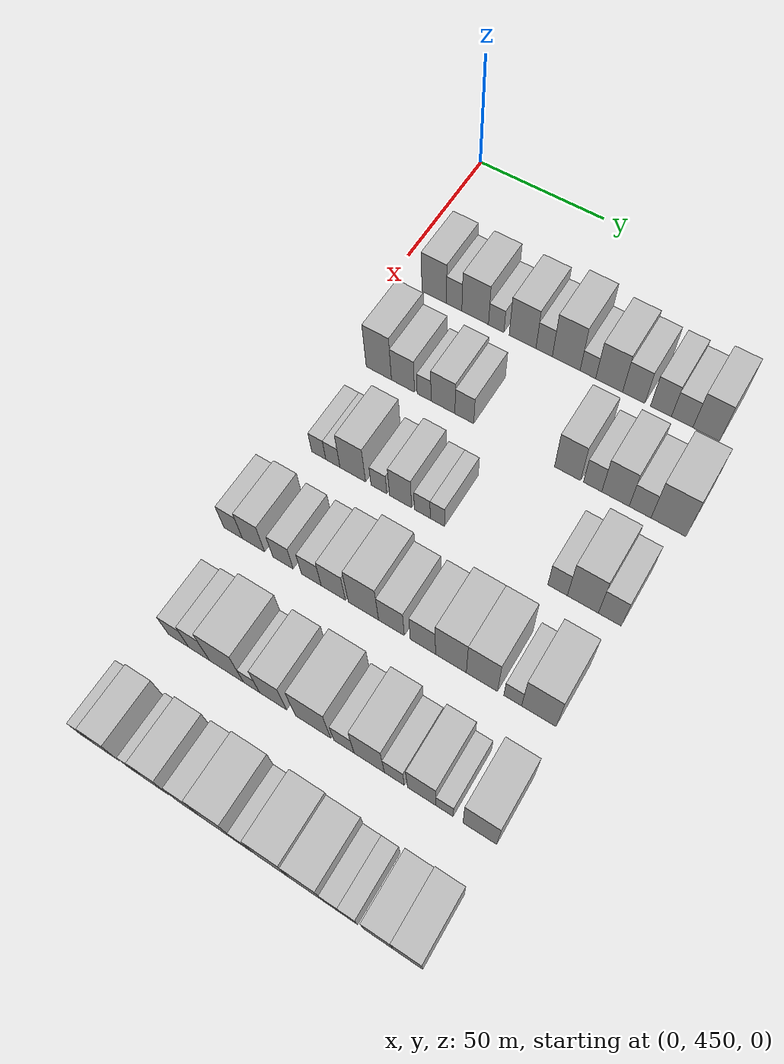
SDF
<sdf version="1.6">
 <world name="default">
  <model name="building_118">
   <static>1</static>
   <pose>50.0000 466.9596 0 0.000000 0.000000 0.000000</pose>
   <link name="link">
    <pose>0 0 10.50 0 0 0</pose>
    <collision name="collision"><geometry><box><size>20.0000 9.7197 21.0000</size></box></geometry></collision>
    <visual name="visual">
     <cast_shadows>0</cast_shadows>
     <geometry><box><size>20.0000 9.7197 21.0000</size></box></geometry>
     <material>
      <script>
       <uri>model://HANNAS_wall/materials/scripts</uri>
       <uri>model://HANNAS_wall/materials/textures</uri>
       <name>vrc/HANNAS_wall</name>
      </script>
     </material>
    </visual>
   </link>
  </model>
  <model name="building_119">
   <static>1</static>
   <pose>50.0000 474.8263 0 0.000000 0.000000 0.000000</pose>
   <link name="link">
    <pose>0 0 7.50 0 0 0</pose>
    <collision name="collision"><geometry><box><size>20.0000 6.0135 15.0000</size></box></geometry></collision>
    <visual name="visual">
     <cast_shadows>0</cast_shadows>
     <geometry><box><size>20.0000 6.0135 15.0000</size></box></geometry>
     <material>
      <script>
       <uri>model://HANNAS_wall/materials/scripts</uri>
       <uri>model://HANNAS_wall/materials/textures</uri>
       <name>vrc/HANNAS_wall</name>
      </script>
     </material>
    </visual>
   </link>
  </model>
  <model name="building_120">
   <static>1</static>
   <pose>50.0000 483.0062 0 0.000000 0.000000 0.000000</pose>
   <link name="link">
    <pose>0 0 10.50 0 0 0</pose>
    <collision name="collision"><geometry><box><size>20.0000 10.3464 21.0000</size></box></geometry></collision>
    <visual name="visual">
     <cast_shadows>0</cast_shadows>
     <geometry><box><size>20.0000 10.3464 21.0000</size></box></geometry>
     <material>
      <script>
       <uri>model://HANNAS_wall/materials/scripts</uri>
       <uri>model://HANNAS_wall/materials/textures</uri>
       <name>vrc/HANNAS_wall</name>
      </script>
     </material>
    </visual>
   </link>
  </model>
  <model name="building_121">
   <static>1</static>
   <pose>50.0000 491.1501 0 0.000000 0.000000 0.000000</pose>
   <link name="link">
    <pose>0 0 6.00 0 0 0</pose>
    <collision name="collision"><geometry><box><size>20.0000 5.9414 12.0000</size></box></geometry></collision>
    <visual name="visual">
     <cast_shadows>0</cast_shadows>
     <geometry><box><size>20.0000 5.9414 12.0000</size></box></geometry>
     <material>
      <script>
       <uri>model://HANNAS_wall/materials/scripts</uri>
       <uri>model://HANNAS_wall/materials/textures</uri>
       <name>vrc/HANNAS_wall</name>
      </script>
     </material>
    </visual>
   </link>
  </model>
  <model name="building_122">
   <static>1</static>
   <pose>50.0000 501.1962 0 0.000000 0.000000 0.000000</pose>
   <link name="link">
    <pose>0 0 10.50 0 0 0</pose>
    <collision name="collision"><geometry><box><size>20.0000 10.1509 21.0000</size></box></geometry></collision>
    <visual name="visual">
     <cast_shadows>0</cast_shadows>
     <geometry><box><size>20.0000 10.1509 21.0000</size></box></geometry>
     <material>
      <script>
       <uri>model://HANNAS_wall/materials/scripts</uri>
       <uri>model://HANNAS_wall/materials/textures</uri>
       <name>vrc/HANNAS_wall</name>
      </script>
     </material>
    </visual>
   </link>
  </model>
  <model name="building_123">
   <static>1</static>
   <pose>50.0000 509.3307 0 0.000000 0.000000 0.000000</pose>
   <link name="link">
    <pose>0 0 7.50 0 0 0</pose>
    <collision name="collision"><geometry><box><size>20.0000 6.1182 15.0000</size></box></geometry></collision>
    <visual name="visual">
     <cast_shadows>0</cast_shadows>
     <geometry><box><size>20.0000 6.1182 15.0000</size></box></geometry>
     <material>
      <script>
       <uri>model://HANNAS_wall/materials/scripts</uri>
       <uri>model://HANNAS_wall/materials/textures</uri>
       <name>vrc/HANNAS_wall</name>
      </script>
     </material>
    </visual>
   </link>
  </model>
  <model name="building_124">
   <static>1</static>
   <pose>50.0000 517.5386 0 0.000000 0.000000 0.000000</pose>
   <link name="link">
    <pose>0 0 12.00 0 0 0</pose>
    <collision name="collision"><geometry><box><size>20.0000 10.2977 24.0000</size></box></geometry></collision>
    <visual name="visual">
     <cast_shadows>0</cast_shadows>
     <geometry><box><size>20.0000 10.2977 24.0000</size></box></geometry>
     <material>
      <script>
       <uri>model://HANNAS_wall/materials/scripts</uri>
       <uri>model://HANNAS_wall/materials/textures</uri>
       <name>vrc/HANNAS_wall</name>
      </script>
     </material>
    </visual>
   </link>
  </model>
  <model name="building_125">
   <static>1</static>
   <pose>50.0000 525.5485 0 0.000000 0.000000 0.000000</pose>
   <link name="link">
    <pose>0 0 6.00 0 0 0</pose>
    <collision name="collision"><geometry><box><size>20.0000 5.7221 12.0000</size></box></geometry></collision>
    <visual name="visual">
     <cast_shadows>0</cast_shadows>
     <geometry><box><size>20.0000 5.7221 12.0000</size></box></geometry>
     <material>
      <script>
       <uri>model://HANNAS_wall/materials/scripts</uri>
       <uri>model://HANNAS_wall/materials/textures</uri>
       <name>vrc/HANNAS_wall</name>
      </script>
     </material>
    </visual>
   </link>
  </model>
  <model name="building_126">
   <static>1</static>
   <pose>50.0000 533.2576 0 0.000000 0.000000 0.000000</pose>
   <link name="link">
    <pose>0 0 10.50 0 0 0</pose>
    <collision name="collision"><geometry><box><size>20.0000 9.6961 21.0000</size></box></geometry></collision>
    <visual name="visual">
     <cast_shadows>0</cast_shadows>
     <geometry><box><size>20.0000 9.6961 21.0000</size></box></geometry>
     <material>
      <script>
       <uri>model://HANNAS_wall/materials/scripts</uri>
       <uri>model://HANNAS_wall/materials/textures</uri>
       <name>vrc/HANNAS_wall</name>
      </script>
     </material>
    </visual>
   </link>
  </model>
  <model name="building_127">
   <static>1</static>
   <pose>50.0000 542.0838 0 0.000000 0.000000 0.000000</pose>
   <link name="link">
    <pose>0 0 9.00 0 0 0</pose>
    <collision name="collision"><geometry><box><size>20.0000 7.9563 18.0000</size></box></geometry></collision>
    <visual name="visual">
     <cast_shadows>0</cast_shadows>
     <geometry><box><size>20.0000 7.9563 18.0000</size></box></geometry>
     <material>
      <script>
       <uri>model://HANNAS_wall/materials/scripts</uri>
       <uri>model://HANNAS_wall/materials/textures</uri>
       <name>vrc/HANNAS_wall</name>
      </script>
     </material>
    </visual>
   </link>
  </model>
  <model name="building_128">
   <static>1</static>
   <pose>50.0000 551.7573 0 0.000000 0.000000 0.000000</pose>
   <link name="link">
    <pose>0 0 9.00 0 0 0</pose>
    <collision name="collision"><geometry><box><size>20.0000 7.3906 18.0000</size></box></geometry></collision>
    <visual name="visual">
     <cast_shadows>0</cast_shadows>
     <geometry><box><size>20.0000 7.3906 18.0000</size></box></geometry>
     <material>
      <script>
       <uri>model://HANNAS_wall/materials/scripts</uri>
       <uri>model://HANNAS_wall/materials/textures</uri>
       <name>vrc/HANNAS_wall</name>
      </script>
     </material>
    </visual>
   </link>
  </model>
  <model name="building_129">
   <static>1</static>
   <pose>50.0000 559.2016 0 0.000000 0.000000 0.000000</pose>
   <link name="link">
    <pose>0 0 7.50 0 0 0</pose>
    <collision name="collision"><geometry><box><size>20.0000 7.4981 15.0000</size></box></geometry></collision>
    <visual name="visual">
     <cast_shadows>0</cast_shadows>
     <geometry><box><size>20.0000 7.4981 15.0000</size></box></geometry>
     <material>
      <script>
       <uri>model://HANNAS_wall/materials/scripts</uri>
       <uri>model://HANNAS_wall/materials/textures</uri>
       <name>vrc/HANNAS_wall</name>
      </script>
     </material>
    </visual>
   </link>
  </model>
  <model name="building_130">
   <static>1</static>
   <pose>50.0000 567.5544 0 0.000000 0.000000 0.000000</pose>
   <link name="link">
    <pose>0 0 10.50 0 0 0</pose>
    <collision name="collision"><geometry><box><size>20.0000 9.2074 21.0000</size></box></geometry></collision>
    <visual name="visual">
     <cast_shadows>0</cast_shadows>
     <geometry><box><size>20.0000 9.2074 21.0000</size></box></geometry>
     <material>
      <script>
       <uri>model://HANNAS_wall/materials/scripts</uri>
       <uri>model://HANNAS_wall/materials/textures</uri>
       <name>vrc/HANNAS_wall</name>
      </script>
     </material>
    </visual>
   </link>
  </model>
  <model name="building_245">
   <static>1</static>
   <pose>85.0000 467.4620 0 0.000000 0.000000 0.000000</pose>
   <link name="link">
    <pose>0 0 12.00 0 0 0</pose>
    <collision name="collision"><geometry><box><size>20.0000 9.7308 24.0000</size></box></geometry></collision>
    <visual name="visual">
     <cast_shadows>0</cast_shadows>
     <geometry><box><size>20.0000 9.7308 24.0000</size></box></geometry>
     <material>
      <script>
       <uri>model://HANNAS_wall/materials/scripts</uri>
       <uri>model://HANNAS_wall/materials/textures</uri>
       <name>vrc/HANNAS_wall</name>
      </script>
     </material>
    </visual>
   </link>
  </model>
  <model name="building_246">
   <static>1</static>
   <pose>85.0000 476.7259 0 0.000000 0.000000 0.000000</pose>
   <link name="link">
    <pose>0 0 9.00 0 0 0</pose>
    <collision name="collision"><geometry><box><size>20.0000 8.7969 18.0000</size></box></geometry></collision>
    <visual name="visual">
     <cast_shadows>0</cast_shadows>
     <geometry><box><size>20.0000 8.7969 18.0000</size></box></geometry>
     <material>
      <script>
       <uri>model://HANNAS_wall/materials/scripts</uri>
       <uri>model://HANNAS_wall/materials/textures</uri>
       <name>vrc/HANNAS_wall</name>
      </script>
     </material>
    </visual>
   </link>
  </model>
  <model name="building_247">
   <static>1</static>
   <pose>85.0000 484.7436 0 0.000000 0.000000 0.000000</pose>
   <link name="link">
    <pose>0 0 6.00 0 0 0</pose>
    <collision name="collision"><geometry><box><size>20.0000 5.2387 12.0000</size></box></geometry></collision>
    <visual name="visual">
     <cast_shadows>0</cast_shadows>
     <geometry><box><size>20.0000 5.2387 12.0000</size></box></geometry>
     <material>
      <script>
       <uri>model://HANNAS_wall/materials/scripts</uri>
       <uri>model://HANNAS_wall/materials/textures</uri>
       <name>vrc/HANNAS_wall</name>
      </script>
     </material>
    </visual>
   </link>
  </model>
  <model name="building_248">
   <static>1</static>
   <pose>85.0000 491.8290 0 0.000000 0.000000 0.000000</pose>
   <link name="link">
    <pose>0 0 9.00 0 0 0</pose>
    <collision name="collision"><geometry><box><size>20.0000 8.9320 18.0000</size></box></geometry></collision>
    <visual name="visual">
     <cast_shadows>0</cast_shadows>
     <geometry><box><size>20.0000 8.9320 18.0000</size></box></geometry>
     <material>
      <script>
       <uri>model://HANNAS_wall/materials/scripts</uri>
       <uri>model://HANNAS_wall/materials/textures</uri>
       <name>vrc/HANNAS_wall</name>
      </script>
     </material>
    </visual>
   </link>
  </model>
  <model name="building_249">
   <static>1</static>
   <pose>85.0000 499.7810 0 0.000000 0.000000 0.000000</pose>
   <link name="link">
    <pose>0 0 7.50 0 0 0</pose>
    <collision name="collision"><geometry><box><size>20.0000 6.9721 15.0000</size></box></geometry></collision>
    <visual name="visual">
     <cast_shadows>0</cast_shadows>
     <geometry><box><size>20.0000 6.9721 15.0000</size></box></geometry>
     <material>
      <script>
       <uri>model://HANNAS_wall/materials/scripts</uri>
       <uri>model://HANNAS_wall/materials/textures</uri>
       <name>vrc/HANNAS_wall</name>
      </script>
     </material>
    </visual>
   </link>
  </model>
  <model name="building_250">
   <static>1</static>
   <pose>85.0000 536.9250 0 0.000000 0.000000 0.000000</pose>
   <link name="link">
    <pose>0 0 10.50 0 0 0</pose>
    <collision name="collision"><geometry><box><size>20.0000 9.1053 21.0000</size></box></geometry></collision>
    <visual name="visual">
     <cast_shadows>0</cast_shadows>
     <geometry><box><size>20.0000 9.1053 21.0000</size></box></geometry>
     <material>
      <script>
       <uri>model://HANNAS_wall/materials/scripts</uri>
       <uri>model://HANNAS_wall/materials/textures</uri>
       <name>vrc/HANNAS_wall</name>
      </script>
     </material>
    </visual>
   </link>
  </model>
  <model name="building_251">
   <static>1</static>
   <pose>85.0000 545.6342 0 0.000000 0.000000 0.000000</pose>
   <link name="link">
    <pose>0 0 7.50 0 0 0</pose>
    <collision name="collision"><geometry><box><size>20.0000 6.3131 15.0000</size></box></geometry></collision>
    <visual name="visual">
     <cast_shadows>0</cast_shadows>
     <geometry><box><size>20.0000 6.3131 15.0000</size></box></geometry>
     <material>
      <script>
       <uri>model://HANNAS_wall/materials/scripts</uri>
       <uri>model://HANNAS_wall/materials/textures</uri>
       <name>vrc/HANNAS_wall</name>
      </script>
     </material>
    </visual>
   </link>
  </model>
  <model name="building_252">
   <static>1</static>
   <pose>85.0000 553.4817 0 0.000000 0.000000 0.000000</pose>
   <link name="link">
    <pose>0 0 10.50 0 0 0</pose>
    <collision name="collision"><geometry><box><size>20.0000 9.3817 21.0000</size></box></geometry></collision>
    <visual name="visual">
     <cast_shadows>0</cast_shadows>
     <geometry><box><size>20.0000 9.3817 21.0000</size></box></geometry>
     <material>
      <script>
       <uri>model://HANNAS_wall/materials/scripts</uri>
       <uri>model://HANNAS_wall/materials/textures</uri>
       <name>vrc/HANNAS_wall</name>
      </script>
     </material>
    </visual>
   </link>
  </model>
  <model name="building_253">
   <static>1</static>
   <pose>85.0000 561.8520 0 0.000000 0.000000 0.000000</pose>
   <link name="link">
    <pose>0 0 7.50 0 0 0</pose>
    <collision name="collision"><geometry><box><size>20.0000 7.3589 15.0000</size></box></geometry></collision>
    <visual name="visual">
     <cast_shadows>0</cast_shadows>
     <geometry><box><size>20.0000 7.3589 15.0000</size></box></geometry>
     <material>
      <script>
       <uri>model://HANNAS_wall/materials/scripts</uri>
       <uri>model://HANNAS_wall/materials/textures</uri>
       <name>vrc/HANNAS_wall</name>
      </script>
     </material>
    </visual>
   </link>
  </model>
  <model name="building_254">
   <static>1</static>
   <pose>85.0000 571.3411 0 0.000000 0.000000 0.000000</pose>
   <link name="link">
    <pose>0 0 12.00 0 0 0</pose>
    <collision name="collision"><geometry><box><size>20.0000 11.6194 24.0000</size></box></geometry></collision>
    <visual name="visual">
     <cast_shadows>0</cast_shadows>
     <geometry><box><size>20.0000 11.6194 24.0000</size></box></geometry>
     <material>
      <script>
       <uri>model://HANNAS_wall/materials/scripts</uri>
       <uri>model://HANNAS_wall/materials/textures</uri>
       <name>vrc/HANNAS_wall</name>
      </script>
     </material>
    </visual>
   </link>
  </model>
  <model name="building_368">
   <static>1</static>
   <pose>120.0000 467.9441 0 0.000000 0.000000 0.000000</pose>
   <link name="link">
    <pose>0 0 6.00 0 0 0</pose>
    <collision name="collision"><geometry><box><size>20.0000 5.2953 12.0000</size></box></geometry></collision>
    <visual name="visual">
     <cast_shadows>0</cast_shadows>
     <geometry><box><size>20.0000 5.2953 12.0000</size></box></geometry>
     <material>
      <script>
       <uri>model://HANNAS_wall/materials/scripts</uri>
       <uri>model://HANNAS_wall/materials/textures</uri>
       <name>vrc/HANNAS_wall</name>
      </script>
     </material>
    </visual>
   </link>
  </model>
  <model name="building_369">
   <static>1</static>
   <pose>120.0000 473.2569 0 0.000000 0.000000 0.000000</pose>
   <link name="link">
    <pose>0 0 6.00 0 0 0</pose>
    <collision name="collision"><geometry><box><size>20.0000 5.3303 12.0000</size></box></geometry></collision>
    <visual name="visual">
     <cast_shadows>0</cast_shadows>
     <geometry><box><size>20.0000 5.3303 12.0000</size></box></geometry>
     <material>
      <script>
       <uri>model://HANNAS_wall/materials/scripts</uri>
       <uri>model://HANNAS_wall/materials/textures</uri>
       <name>vrc/HANNAS_wall</name>
      </script>
     </material>
    </visual>
   </link>
  </model>
  <model name="building_370">
   <static>1</static>
   <pose>120.0000 480.6622 0 0.000000 0.000000 0.000000</pose>
   <link name="link">
    <pose>0 0 10.50 0 0 0</pose>
    <collision name="collision"><geometry><box><size>20.0000 9.4802 21.0000</size></box></geometry></collision>
    <visual name="visual">
     <cast_shadows>0</cast_shadows>
     <geometry><box><size>20.0000 9.4802 21.0000</size></box></geometry>
     <material>
      <script>
       <uri>model://HANNAS_wall/materials/scripts</uri>
       <uri>model://HANNAS_wall/materials/textures</uri>
       <name>vrc/HANNAS_wall</name>
      </script>
     </material>
    </visual>
   </link>
  </model>
  <model name="building_371">
   <static>1</static>
   <pose>120.0000 490.3005 0 0.000000 0.000000 0.000000</pose>
   <link name="link">
    <pose>0 0 6.00 0 0 0</pose>
    <collision name="collision"><geometry><box><size>20.0000 5.7964 12.0000</size></box></geometry></collision>
    <visual name="visual">
     <cast_shadows>0</cast_shadows>
     <geometry><box><size>20.0000 5.7964 12.0000</size></box></geometry>
     <material>
      <script>
       <uri>model://HANNAS_wall/materials/scripts</uri>
       <uri>model://HANNAS_wall/materials/textures</uri>
       <name>vrc/HANNAS_wall</name>
      </script>
     </material>
    </visual>
   </link>
  </model>
  <model name="building_372">
   <static>1</static>
   <pose>120.0000 498.1602 0 0.000000 0.000000 0.000000</pose>
   <link name="link">
    <pose>0 0 9.00 0 0 0</pose>
    <collision name="collision"><geometry><box><size>20.0000 7.9231 18.0000</size></box></geometry></collision>
    <visual name="visual">
     <cast_shadows>0</cast_shadows>
     <geometry><box><size>20.0000 7.9231 18.0000</size></box></geometry>
     <material>
      <script>
       <uri>model://HANNAS_wall/materials/scripts</uri>
       <uri>model://HANNAS_wall/materials/textures</uri>
       <name>vrc/HANNAS_wall</name>
      </script>
     </material>
    </visual>
   </link>
  </model>
  <model name="building_373">
   <static>1</static>
   <pose>120.0000 505.9327 0 0.000000 0.000000 0.000000</pose>
   <link name="link">
    <pose>0 0 6.00 0 0 0</pose>
    <collision name="collision"><geometry><box><size>20.0000 5.6220 12.0000</size></box></geometry></collision>
    <visual name="visual">
     <cast_shadows>0</cast_shadows>
     <geometry><box><size>20.0000 5.6220 12.0000</size></box></geometry>
     <material>
      <script>
       <uri>model://HANNAS_wall/materials/scripts</uri>
       <uri>model://HANNAS_wall/materials/textures</uri>
       <name>vrc/HANNAS_wall</name>
      </script>
     </material>
    </visual>
   </link>
  </model>
  <model name="building_374">
   <static>1</static>
   <pose>120.0000 511.2681 0 0.000000 0.000000 0.000000</pose>
   <link name="link">
    <pose>0 0 6.00 0 0 0</pose>
    <collision name="collision"><geometry><box><size>20.0000 5.0487 12.0000</size></box></geometry></collision>
    <visual name="visual">
     <cast_shadows>0</cast_shadows>
     <geometry><box><size>20.0000 5.0487 12.0000</size></box></geometry>
     <material>
      <script>
       <uri>model://HANNAS_wall/materials/scripts</uri>
       <uri>model://HANNAS_wall/materials/textures</uri>
       <name>vrc/HANNAS_wall</name>
      </script>
     </material>
    </visual>
   </link>
  </model>
  <model name="building_375">
   <static>1</static>
   <pose>120.0000 552.5059 0 0.000000 0.000000 0.000000</pose>
   <link name="link">
    <pose>0 0 7.50 0 0 0</pose>
    <collision name="collision"><geometry><box><size>20.0000 6.4756 15.0000</size></box></geometry></collision>
    <visual name="visual">
     <cast_shadows>0</cast_shadows>
     <geometry><box><size>20.0000 6.4756 15.0000</size></box></geometry>
     <material>
      <script>
       <uri>model://HANNAS_wall/materials/scripts</uri>
       <uri>model://HANNAS_wall/materials/textures</uri>
       <name>vrc/HANNAS_wall</name>
      </script>
     </material>
    </visual>
   </link>
  </model>
  <model name="building_376">
   <static>1</static>
   <pose>120.0000 560.8268 0 0.000000 0.000000 0.000000</pose>
   <link name="link">
    <pose>0 0 12.00 0 0 0</pose>
    <collision name="collision"><geometry><box><size>20.0000 10.1662 24.0000</size></box></geometry></collision>
    <visual name="visual">
     <cast_shadows>0</cast_shadows>
     <geometry><box><size>20.0000 10.1662 24.0000</size></box></geometry>
     <material>
      <script>
       <uri>model://HANNAS_wall/materials/scripts</uri>
       <uri>model://HANNAS_wall/materials/textures</uri>
       <name>vrc/HANNAS_wall</name>
      </script>
     </material>
    </visual>
   </link>
  </model>
  <model name="building_377">
   <static>1</static>
   <pose>120.0000 569.6117 0 0.000000 0.000000 0.000000</pose>
   <link name="link">
    <pose>0 0 9.00 0 0 0</pose>
    <collision name="collision"><geometry><box><size>20.0000 7.4035 18.0000</size></box></geometry></collision>
    <visual name="visual">
     <cast_shadows>0</cast_shadows>
     <geometry><box><size>20.0000 7.4035 18.0000</size></box></geometry>
     <material>
      <script>
       <uri>model://HANNAS_wall/materials/scripts</uri>
       <uri>model://HANNAS_wall/materials/textures</uri>
       <name>vrc/HANNAS_wall</name>
      </script>
     </material>
    </visual>
   </link>
  </model>
  <model name="building_495">
   <static>1</static>
   <pose>155.0000 460.9240 0 0.000000 0.000000 0.000000</pose>
   <link name="link">
    <pose>0 0 7.50 0 0 0</pose>
    <collision name="collision"><geometry><box><size>20.0000 6.8954 15.0000</size></box></geometry></collision>
    <visual name="visual">
     <cast_shadows>0</cast_shadows>
     <geometry><box><size>20.0000 6.8954 15.0000</size></box></geometry>
     <material>
      <script>
       <uri>model://HANNAS_wall/materials/scripts</uri>
       <uri>model://HANNAS_wall/materials/textures</uri>
       <name>vrc/HANNAS_wall</name>
      </script>
     </material>
    </visual>
   </link>
  </model>
  <model name="building_496">
   <static>1</static>
   <pose>155.0000 468.4603 0 0.000000 0.000000 0.000000</pose>
   <link name="link">
    <pose>0 0 9.00 0 0 0</pose>
    <collision name="collision"><geometry><box><size>20.0000 8.1770 18.0000</size></box></geometry></collision>
    <visual name="visual">
     <cast_shadows>0</cast_shadows>
     <geometry><box><size>20.0000 8.1770 18.0000</size></box></geometry>
     <material>
      <script>
       <uri>model://HANNAS_wall/materials/scripts</uri>
       <uri>model://HANNAS_wall/materials/textures</uri>
       <name>vrc/HANNAS_wall</name>
      </script>
     </material>
    </visual>
   </link>
  </model>
  <model name="building_497">
   <static>1</static>
   <pose>155.0000 479.2297 0 0.000000 0.000000 0.000000</pose>
   <link name="link">
    <pose>0 0 7.50 0 0 0</pose>
    <collision name="collision"><geometry><box><size>20.0000 7.3618 15.0000</size></box></geometry></collision>
    <visual name="visual">
     <cast_shadows>0</cast_shadows>
     <geometry><box><size>20.0000 7.3618 15.0000</size></box></geometry>
     <material>
      <script>
       <uri>model://HANNAS_wall/materials/scripts</uri>
       <uri>model://HANNAS_wall/materials/textures</uri>
       <name>vrc/HANNAS_wall</name>
      </script>
     </material>
    </visual>
   </link>
  </model>
  <model name="building_498">
   <static>1</static>
   <pose>155.0000 489.4258 0 0.000000 0.000000 0.000000</pose>
   <link name="link">
    <pose>0 0 7.50 0 0 0</pose>
    <collision name="collision"><geometry><box><size>20.0000 7.0305 15.0000</size></box></geometry></collision>
    <visual name="visual">
     <cast_shadows>0</cast_shadows>
     <geometry><box><size>20.0000 7.0305 15.0000</size></box></geometry>
     <material>
      <script>
       <uri>model://HANNAS_wall/materials/scripts</uri>
       <uri>model://HANNAS_wall/materials/textures</uri>
       <name>vrc/HANNAS_wall</name>
      </script>
     </material>
    </visual>
   </link>
  </model>
  <model name="building_499">
   <static>1</static>
   <pose>155.0000 497.2094 0 0.000000 0.000000 0.000000</pose>
   <link name="link">
    <pose>0 0 9.00 0 0 0</pose>
    <collision name="collision"><geometry><box><size>20.0000 8.5366 18.0000</size></box></geometry></collision>
    <visual name="visual">
     <cast_shadows>0</cast_shadows>
     <geometry><box><size>20.0000 8.5366 18.0000</size></box></geometry>
     <material>
      <script>
       <uri>model://HANNAS_wall/materials/scripts</uri>
       <uri>model://HANNAS_wall/materials/textures</uri>
       <name>vrc/HANNAS_wall</name>
      </script>
     </material>
    </visual>
   </link>
  </model>
  <model name="building_500">
   <static>1</static>
   <pose>155.0000 507.7225 0 0.000000 0.000000 0.000000</pose>
   <link name="link">
    <pose>0 0 12.00 0 0 0</pose>
    <collision name="collision"><geometry><box><size>20.0000 10.4895 24.0000</size></box></geometry></collision>
    <visual name="visual">
     <cast_shadows>0</cast_shadows>
     <geometry><box><size>20.0000 10.4895 24.0000</size></box></geometry>
     <material>
      <script>
       <uri>model://HANNAS_wall/materials/scripts</uri>
       <uri>model://HANNAS_wall/materials/textures</uri>
       <name>vrc/HANNAS_wall</name>
      </script>
     </material>
    </visual>
   </link>
  </model>
  <model name="building_501">
   <static>1</static>
   <pose>155.0000 517.3484 0 0.000000 0.000000 0.000000</pose>
   <link name="link">
    <pose>0 0 9.00 0 0 0</pose>
    <collision name="collision"><geometry><box><size>20.0000 8.7624 18.0000</size></box></geometry></collision>
    <visual name="visual">
     <cast_shadows>0</cast_shadows>
     <geometry><box><size>20.0000 8.7624 18.0000</size></box></geometry>
     <material>
      <script>
       <uri>model://HANNAS_wall/materials/scripts</uri>
       <uri>model://HANNAS_wall/materials/textures</uri>
       <name>vrc/HANNAS_wall</name>
      </script>
     </material>
    </visual>
   </link>
  </model>
  <model name="building_502">
   <static>1</static>
   <pose>155.0000 527.9531 0 0.000000 0.000000 0.000000</pose>
   <link name="link">
    <pose>0 0 9.00 0 0 0</pose>
    <collision name="collision"><geometry><box><size>20.0000 8.4471 18.0000</size></box></geometry></collision>
    <visual name="visual">
     <cast_shadows>0</cast_shadows>
     <geometry><box><size>20.0000 8.4471 18.0000</size></box></geometry>
     <material>
      <script>
       <uri>model://HANNAS_wall/materials/scripts</uri>
       <uri>model://HANNAS_wall/materials/textures</uri>
       <name>vrc/HANNAS_wall</name>
      </script>
     </material>
    </visual>
   </link>
  </model>
  <model name="building_503">
   <static>1</static>
   <pose>155.0000 537.2773 0 0.000000 0.000000 0.000000</pose>
   <link name="link">
    <pose>0 0 12.00 0 0 0</pose>
    <collision name="collision"><geometry><box><size>20.0000 10.2012 24.0000</size></box></geometry></collision>
    <visual name="visual">
     <cast_shadows>0</cast_shadows>
     <geometry><box><size>20.0000 10.2012 24.0000</size></box></geometry>
     <material>
      <script>
       <uri>model://HANNAS_wall/materials/scripts</uri>
       <uri>model://HANNAS_wall/materials/textures</uri>
       <name>vrc/HANNAS_wall</name>
      </script>
     </material>
    </visual>
   </link>
  </model>
  <model name="building_504">
   <static>1</static>
   <pose>155.0000 547.4550 0 0.000000 0.000000 0.000000</pose>
   <link name="link">
    <pose>0 0 12.00 0 0 0</pose>
    <collision name="collision"><geometry><box><size>20.0000 10.1544 24.0000</size></box></geometry></collision>
    <visual name="visual">
     <cast_shadows>0</cast_shadows>
     <geometry><box><size>20.0000 10.1544 24.0000</size></box></geometry>
     <material>
      <script>
       <uri>model://HANNAS_wall/materials/scripts</uri>
       <uri>model://HANNAS_wall/materials/textures</uri>
       <name>vrc/HANNAS_wall</name>
      </script>
     </material>
    </visual>
   </link>
  </model>
  <model name="building_505">
   <static>1</static>
   <pose>155.0000 557.3870 0 0.000000 0.000000 0.000000</pose>
   <link name="link">
    <pose>0 0 6.00 0 0 0</pose>
    <collision name="collision"><geometry><box><size>20.0000 5.7095 12.0000</size></box></geometry></collision>
    <visual name="visual">
     <cast_shadows>0</cast_shadows>
     <geometry><box><size>20.0000 5.7095 12.0000</size></box></geometry>
     <material>
      <script>
       <uri>model://HANNAS_wall/materials/scripts</uri>
       <uri>model://HANNAS_wall/materials/textures</uri>
       <name>vrc/HANNAS_wall</name>
      </script>
     </material>
    </visual>
   </link>
  </model>
  <model name="building_506">
   <static>1</static>
   <pose>155.0000 565.6667 0 0.000000 0.000000 0.000000</pose>
   <link name="link">
    <pose>0 0 12.00 0 0 0</pose>
    <collision name="collision"><geometry><box><size>20.0000 10.8498 24.0000</size></box></geometry></collision>
    <visual name="visual">
     <cast_shadows>0</cast_shadows>
     <geometry><box><size>20.0000 10.8498 24.0000</size></box></geometry>
     <material>
      <script>
       <uri>model://HANNAS_wall/materials/scripts</uri>
       <uri>model://HANNAS_wall/materials/textures</uri>
       <name>vrc/HANNAS_wall</name>
      </script>
     </material>
    </visual>
   </link>
  </model>
  <model name="building_627">
   <static>1</static>
   <pose>190.0000 467.7265 0 0.000000 0.000000 0.000000</pose>
   <link name="link">
    <pose>0 0 7.50 0 0 0</pose>
    <collision name="collision"><geometry><box><size>20.0000 7.3465 15.0000</size></box></geometry></collision>
    <visual name="visual">
     <cast_shadows>0</cast_shadows>
     <geometry><box><size>20.0000 7.3465 15.0000</size></box></geometry>
     <material>
      <script>
       <uri>model://HANNAS_wall/materials/scripts</uri>
       <uri>model://HANNAS_wall/materials/textures</uri>
       <name>vrc/HANNAS_wall</name>
      </script>
     </material>
    </visual>
   </link>
  </model>
  <model name="building_628">
   <static>1</static>
   <pose>190.0000 475.0803 0 0.000000 0.000000 0.000000</pose>
   <link name="link">
    <pose>0 0 9.00 0 0 0</pose>
    <collision name="collision"><geometry><box><size>20.0000 7.3611 18.0000</size></box></geometry></collision>
    <visual name="visual">
     <cast_shadows>0</cast_shadows>
     <geometry><box><size>20.0000 7.3611 18.0000</size></box></geometry>
     <material>
      <script>
       <uri>model://HANNAS_wall/materials/scripts</uri>
       <uri>model://HANNAS_wall/materials/textures</uri>
       <name>vrc/HANNAS_wall</name>
      </script>
     </material>
    </visual>
   </link>
  </model>
  <model name="building_629">
   <static>1</static>
   <pose>190.0000 484.7108 0 0.000000 0.000000 0.000000</pose>
   <link name="link">
    <pose>0 0 12.00 0 0 0</pose>
    <collision name="collision"><geometry><box><size>20.0000 11.8998 24.0000</size></box></geometry></collision>
    <visual name="visual">
     <cast_shadows>0</cast_shadows>
     <geometry><box><size>20.0000 11.8998 24.0000</size></box></geometry>
     <material>
      <script>
       <uri>model://HANNAS_wall/materials/scripts</uri>
       <uri>model://HANNAS_wall/materials/textures</uri>
       <name>vrc/HANNAS_wall</name>
      </script>
     </material>
    </visual>
   </link>
  </model>
  <model name="building_630">
   <static>1</static>
   <pose>190.0000 493.4360 0 0.000000 0.000000 0.000000</pose>
   <link name="link">
    <pose>0 0 6.00 0 0 0</pose>
    <collision name="collision"><geometry><box><size>20.0000 5.5507 12.0000</size></box></geometry></collision>
    <visual name="visual">
     <cast_shadows>0</cast_shadows>
     <geometry><box><size>20.0000 5.5507 12.0000</size></box></geometry>
     <material>
      <script>
       <uri>model://HANNAS_wall/materials/scripts</uri>
       <uri>model://HANNAS_wall/materials/textures</uri>
       <name>vrc/HANNAS_wall</name>
      </script>
     </material>
    </visual>
   </link>
  </model>
  <model name="building_631">
   <static>1</static>
   <pose>190.0000 500.8165 0 0.000000 0.000000 0.000000</pose>
   <link name="link">
    <pose>0 0 10.50 0 0 0</pose>
    <collision name="collision"><geometry><box><size>20.0000 9.2103 21.0000</size></box></geometry></collision>
    <visual name="visual">
     <cast_shadows>0</cast_shadows>
     <geometry><box><size>20.0000 9.2103 21.0000</size></box></geometry>
     <material>
      <script>
       <uri>model://HANNAS_wall/materials/scripts</uri>
       <uri>model://HANNAS_wall/materials/textures</uri>
       <name>vrc/HANNAS_wall</name>
      </script>
     </material>
    </visual>
   </link>
  </model>
  <model name="building_632">
   <static>1</static>
   <pose>190.0000 514.3048 0 0.000000 0.000000 0.000000</pose>
   <link name="link">
    <pose>0 0 12.00 0 0 0</pose>
    <collision name="collision"><geometry><box><size>20.0000 11.7662 24.0000</size></box></geometry></collision>
    <visual name="visual">
     <cast_shadows>0</cast_shadows>
     <geometry><box><size>20.0000 11.7662 24.0000</size></box></geometry>
     <material>
      <script>
       <uri>model://HANNAS_wall/materials/scripts</uri>
       <uri>model://HANNAS_wall/materials/textures</uri>
       <name>vrc/HANNAS_wall</name>
      </script>
     </material>
    </visual>
   </link>
  </model>
  <model name="building_633">
   <static>1</static>
   <pose>190.0000 524.5257 0 0.000000 0.000000 0.000000</pose>
   <link name="link">
    <pose>0 0 7.50 0 0 0</pose>
    <collision name="collision"><geometry><box><size>20.0000 6.6756 15.0000</size></box></geometry></collision>
    <visual name="visual">
     <cast_shadows>0</cast_shadows>
     <geometry><box><size>20.0000 6.6756 15.0000</size></box></geometry>
     <material>
      <script>
       <uri>model://HANNAS_wall/materials/scripts</uri>
       <uri>model://HANNAS_wall/materials/textures</uri>
       <name>vrc/HANNAS_wall</name>
      </script>
     </material>
    </visual>
   </link>
  </model>
  <model name="building_634">
   <static>1</static>
   <pose>190.0000 532.7412 0 0.000000 0.000000 0.000000</pose>
   <link name="link">
    <pose>0 0 12.00 0 0 0</pose>
    <collision name="collision"><geometry><box><size>20.0000 9.7555 24.0000</size></box></geometry></collision>
    <visual name="visual">
     <cast_shadows>0</cast_shadows>
     <geometry><box><size>20.0000 9.7555 24.0000</size></box></geometry>
     <material>
      <script>
       <uri>model://HANNAS_wall/materials/scripts</uri>
       <uri>model://HANNAS_wall/materials/textures</uri>
       <name>vrc/HANNAS_wall</name>
      </script>
     </material>
    </visual>
   </link>
  </model>
  <model name="building_635">
   <static>1</static>
   <pose>190.0000 540.7984 0 0.000000 0.000000 0.000000</pose>
   <link name="link">
    <pose>0 0 7.50 0 0 0</pose>
    <collision name="collision"><geometry><box><size>20.0000 6.3588 15.0000</size></box></geometry></collision>
    <visual name="visual">
     <cast_shadows>0</cast_shadows>
     <geometry><box><size>20.0000 6.3588 15.0000</size></box></geometry>
     <material>
      <script>
       <uri>model://HANNAS_wall/materials/scripts</uri>
       <uri>model://HANNAS_wall/materials/textures</uri>
       <name>vrc/HANNAS_wall</name>
      </script>
     </material>
    </visual>
   </link>
  </model>
  <model name="building_636">
   <static>1</static>
   <pose>190.0000 549.4501 0 0.000000 0.000000 0.000000</pose>
   <link name="link">
    <pose>0 0 10.50 0 0 0</pose>
    <collision name="collision"><geometry><box><size>20.0000 8.9447 21.0000</size></box></geometry></collision>
    <visual name="visual">
     <cast_shadows>0</cast_shadows>
     <geometry><box><size>20.0000 8.9447 21.0000</size></box></geometry>
     <material>
      <script>
       <uri>model://HANNAS_wall/materials/scripts</uri>
       <uri>model://HANNAS_wall/materials/textures</uri>
       <name>vrc/HANNAS_wall</name>
      </script>
     </material>
    </visual>
   </link>
  </model>
  <model name="building_637">
   <static>1</static>
   <pose>190.0000 556.5903 0 0.000000 0.000000 0.000000</pose>
   <link name="link">
    <pose>0 0 6.00 0 0 0</pose>
    <collision name="collision"><geometry><box><size>20.0000 5.3357 12.0000</size></box></geometry></collision>
    <visual name="visual">
     <cast_shadows>0</cast_shadows>
     <geometry><box><size>20.0000 5.3357 12.0000</size></box></geometry>
     <material>
      <script>
       <uri>model://HANNAS_wall/materials/scripts</uri>
       <uri>model://HANNAS_wall/materials/textures</uri>
       <name>vrc/HANNAS_wall</name>
      </script>
     </material>
    </visual>
   </link>
  </model>
  <model name="building_638">
   <static>1</static>
   <pose>190.0000 567.4116 0 0.000000 0.000000 0.000000</pose>
   <link name="link">
    <pose>0 0 12.00 0 0 0</pose>
    <collision name="collision"><geometry><box><size>20.0000 10.3068 24.0000</size></box></geometry></collision>
    <visual name="visual">
     <cast_shadows>0</cast_shadows>
     <geometry><box><size>20.0000 10.3068 24.0000</size></box></geometry>
     <material>
      <script>
       <uri>model://HANNAS_wall/materials/scripts</uri>
       <uri>model://HANNAS_wall/materials/textures</uri>
       <name>vrc/HANNAS_wall</name>
      </script>
     </material>
    </visual>
   </link>
  </model>
  <model name="building_750">
   <static>1</static>
   <pose>225.0000 463.6254 0 0.000000 0.000000 0.000000</pose>
   <link name="link">
    <pose>0 0 6.00 0 0 0</pose>
    <collision name="collision"><geometry><box><size>20.0000 5.4783 12.0000</size></box></geometry></collision>
    <visual name="visual">
     <cast_shadows>0</cast_shadows>
     <geometry><box><size>20.0000 5.4783 12.0000</size></box></geometry>
     <material>
      <script>
       <uri>model://HANNAS_wall/materials/scripts</uri>
       <uri>model://HANNAS_wall/materials/textures</uri>
       <name>vrc/HANNAS_wall</name>
      </script>
     </material>
    </visual>
   </link>
  </model>
  <model name="building_751">
   <static>1</static>
   <pose>225.0000 470.6225 0 0.000000 0.000000 0.000000</pose>
   <link name="link">
    <pose>0 0 9.00 0 0 0</pose>
    <collision name="collision"><geometry><box><size>20.0000 8.5160 18.0000</size></box></geometry></collision>
    <visual name="visual">
     <cast_shadows>0</cast_shadows>
     <geometry><box><size>20.0000 8.5160 18.0000</size></box></geometry>
     <material>
      <script>
       <uri>model://HANNAS_wall/materials/scripts</uri>
       <uri>model://HANNAS_wall/materials/textures</uri>
       <name>vrc/HANNAS_wall</name>
      </script>
     </material>
    </visual>
   </link>
  </model>
  <model name="building_752">
   <static>1</static>
   <pose>225.0000 480.3621 0 0.000000 0.000000 0.000000</pose>
   <link name="link">
    <pose>0 0 6.00 0 0 0</pose>
    <collision name="collision"><geometry><box><size>20.0000 4.9631 12.0000</size></box></geometry></collision>
    <visual name="visual">
     <cast_shadows>0</cast_shadows>
     <geometry><box><size>20.0000 4.9631 12.0000</size></box></geometry>
     <material>
      <script>
       <uri>model://HANNAS_wall/materials/scripts</uri>
       <uri>model://HANNAS_wall/materials/textures</uri>
       <name>vrc/HANNAS_wall</name>
      </script>
     </material>
    </visual>
   </link>
  </model>
  <model name="building_753">
   <static>1</static>
   <pose>225.0000 487.2537 0 0.000000 0.000000 0.000000</pose>
   <link name="link">
    <pose>0 0 9.00 0 0 0</pose>
    <collision name="collision"><geometry><box><size>20.0000 8.8201 18.0000</size></box></geometry></collision>
    <visual name="visual">
     <cast_shadows>0</cast_shadows>
     <geometry><box><size>20.0000 8.8201 18.0000</size></box></geometry>
     <material>
      <script>
       <uri>model://HANNAS_wall/materials/scripts</uri>
       <uri>model://HANNAS_wall/materials/textures</uri>
       <name>vrc/HANNAS_wall</name>
      </script>
     </material>
    </visual>
   </link>
  </model>
  <model name="building_754">
   <static>1</static>
   <pose>225.0000 498.6164 0 0.000000 0.000000 0.000000</pose>
   <link name="link">
    <pose>0 0 9.00 0 0 0</pose>
    <collision name="collision"><geometry><box><size>20.0000 7.9055 18.0000</size></box></geometry></collision>
    <visual name="visual">
     <cast_shadows>0</cast_shadows>
     <geometry><box><size>20.0000 7.9055 18.0000</size></box></geometry>
     <material>
      <script>
       <uri>model://HANNAS_wall/materials/scripts</uri>
       <uri>model://HANNAS_wall/materials/textures</uri>
       <name>vrc/HANNAS_wall</name>
      </script>
     </material>
    </visual>
   </link>
  </model>
  <model name="building_755">
   <static>1</static>
   <pose>225.0000 508.0870 0 0.000000 0.000000 0.000000</pose>
   <link name="link">
    <pose>0 0 12.00 0 0 0</pose>
    <collision name="collision"><geometry><box><size>20.0000 11.0357 24.0000</size></box></geometry></collision>
    <visual name="visual">
     <cast_shadows>0</cast_shadows>
     <geometry><box><size>20.0000 11.0357 24.0000</size></box></geometry>
     <material>
      <script>
       <uri>model://HANNAS_wall/materials/scripts</uri>
       <uri>model://HANNAS_wall/materials/textures</uri>
       <name>vrc/HANNAS_wall</name>
      </script>
     </material>
    </visual>
   </link>
  </model>
  <model name="building_756">
   <static>1</static>
   <pose>225.0000 516.4940 0 0.000000 0.000000 0.000000</pose>
   <link name="link">
    <pose>0 0 6.00 0 0 0</pose>
    <collision name="collision"><geometry><box><size>20.0000 5.7784 12.0000</size></box></geometry></collision>
    <visual name="visual">
     <cast_shadows>0</cast_shadows>
     <geometry><box><size>20.0000 5.7784 12.0000</size></box></geometry>
     <material>
      <script>
       <uri>model://HANNAS_wall/materials/scripts</uri>
       <uri>model://HANNAS_wall/materials/textures</uri>
       <name>vrc/HANNAS_wall</name>
      </script>
     </material>
    </visual>
   </link>
  </model>
  <model name="building_757">
   <static>1</static>
   <pose>225.0000 525.7895 0 0.000000 0.000000 0.000000</pose>
   <link name="link">
    <pose>0 0 12.00 0 0 0</pose>
    <collision name="collision"><geometry><box><size>20.0000 10.8126 24.0000</size></box></geometry></collision>
    <visual name="visual">
     <cast_shadows>0</cast_shadows>
     <geometry><box><size>20.0000 10.8126 24.0000</size></box></geometry>
     <material>
      <script>
       <uri>model://HANNAS_wall/materials/scripts</uri>
       <uri>model://HANNAS_wall/materials/textures</uri>
       <name>vrc/HANNAS_wall</name>
      </script>
     </material>
    </visual>
   </link>
  </model>
  <model name="building_758">
   <static>1</static>
   <pose>225.0000 536.3366 0 0.000000 0.000000 0.000000</pose>
   <link name="link">
    <pose>0 0 10.50 0 0 0</pose>
    <collision name="collision"><geometry><box><size>20.0000 10.2815 21.0000</size></box></geometry></collision>
    <visual name="visual">
     <cast_shadows>0</cast_shadows>
     <geometry><box><size>20.0000 10.2815 21.0000</size></box></geometry>
     <material>
      <script>
       <uri>model://HANNAS_wall/materials/scripts</uri>
       <uri>model://HANNAS_wall/materials/textures</uri>
       <name>vrc/HANNAS_wall</name>
      </script>
     </material>
    </visual>
   </link>
  </model>
  <model name="building_759">
   <static>1</static>
   <pose>225.0000 544.2427 0 0.000000 0.000000 0.000000</pose>
   <link name="link">
    <pose>0 0 6.00 0 0 0</pose>
    <collision name="collision"><geometry><box><size>20.0000 5.5308 12.0000</size></box></geometry></collision>
    <visual name="visual">
     <cast_shadows>0</cast_shadows>
     <geometry><box><size>20.0000 5.5308 12.0000</size></box></geometry>
     <material>
      <script>
       <uri>model://HANNAS_wall/materials/scripts</uri>
       <uri>model://HANNAS_wall/materials/textures</uri>
       <name>vrc/HANNAS_wall</name>
      </script>
     </material>
    </visual>
   </link>
  </model>
  <model name="building_760">
   <static>1</static>
   <pose>225.0000 549.6239 0 0.000000 0.000000 0.000000</pose>
   <link name="link">
    <pose>0 0 6.00 0 0 0</pose>
    <collision name="collision"><geometry><box><size>20.0000 5.2316 12.0000</size></box></geometry></collision>
    <visual name="visual">
     <cast_shadows>0</cast_shadows>
     <geometry><box><size>20.0000 5.2316 12.0000</size></box></geometry>
     <material>
      <script>
       <uri>model://HANNAS_wall/materials/scripts</uri>
       <uri>model://HANNAS_wall/materials/textures</uri>
       <name>vrc/HANNAS_wall</name>
      </script>
     </material>
    </visual>
   </link>
  </model>
  <model name="building_761">
   <static>1</static>
   <pose>225.0000 558.5689 0 0.000000 0.000000 0.000000</pose>
   <link name="link">
    <pose>0 0 9.00 0 0 0</pose>
    <collision name="collision"><geometry><box><size>20.0000 8.6586 18.0000</size></box></geometry></collision>
    <visual name="visual">
     <cast_shadows>0</cast_shadows>
     <geometry><box><size>20.0000 8.6586 18.0000</size></box></geometry>
     <material>
      <script>
       <uri>model://HANNAS_wall/materials/scripts</uri>
       <uri>model://HANNAS_wall/materials/textures</uri>
       <name>vrc/HANNAS_wall</name>
      </script>
     </material>
    </visual>
   </link>
  </model>
  <model name="building_762">
   <static>1</static>
   <pose>225.0000 567.2688 0 0.000000 0.000000 0.000000</pose>
   <link name="link">
    <pose>0 0 10.50 0 0 0</pose>
    <collision name="collision"><geometry><box><size>20.0000 8.7410 21.0000</size></box></geometry></collision>
    <visual name="visual">
     <cast_shadows>0</cast_shadows>
     <geometry><box><size>20.0000 8.7410 21.0000</size></box></geometry>
     <material>
      <script>
       <uri>model://HANNAS_wall/materials/scripts</uri>
       <uri>model://HANNAS_wall/materials/textures</uri>
       <name>vrc/HANNAS_wall</name>
      </script>
     </material>
    </visual>
   </link>
  </model>
 </world>
</sdf>
